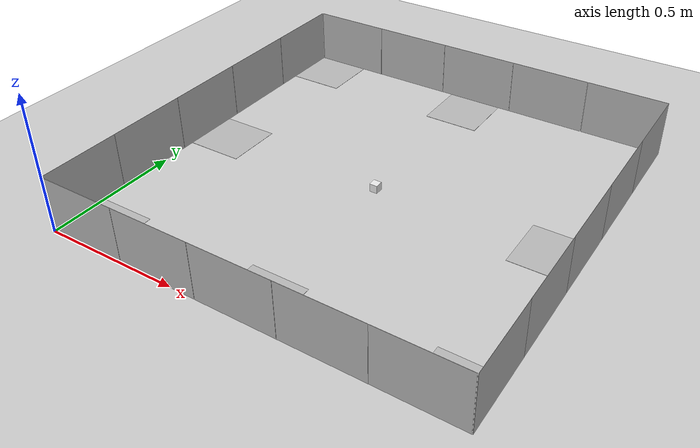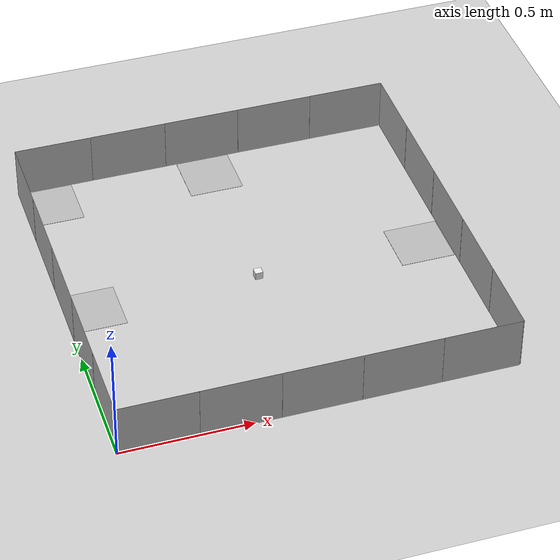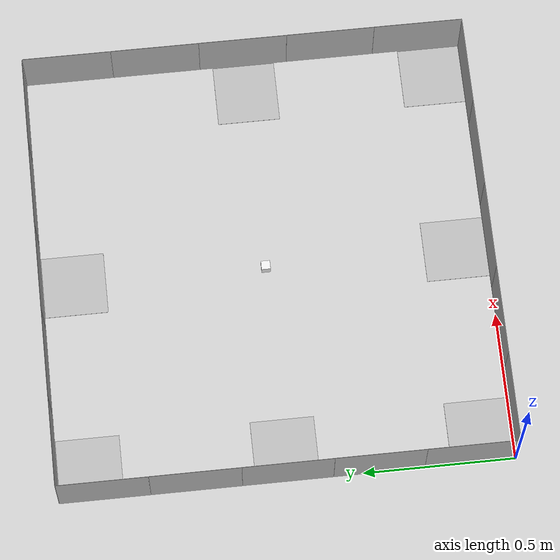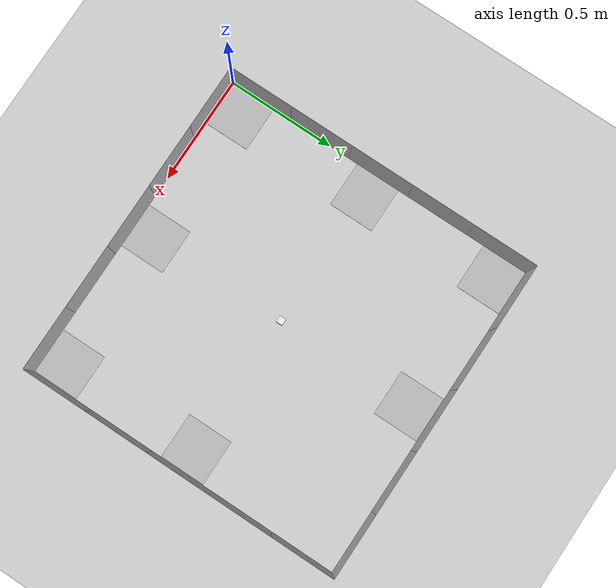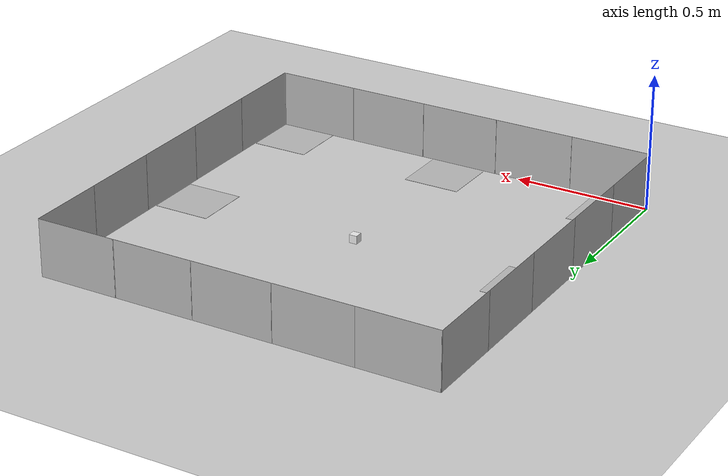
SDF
<?xml version="1.0" ?>

<sdf version="1.6">

  <world name="ur3_cubes">

    <gui>
      <camera name="user_camera">
        <pose>1.4 -2.3 1.4 0.0 0.25 1.9</pose>
      </camera>
    </gui>

    <gravity>0 0 -9.81</gravity>

    <physics name="default_physics" default="0" type="ode">
      <max_step_size>0.001</max_step_size>
      <real_time_factor>1</real_time_factor>
      <real_time_update_rate>1000</real_time_update_rate>
    </physics>

    <scene>
      <ambient>0.4 0.4 0.4 1</ambient>
      <background>0.7 0.7 0.7 1</background>
      <shadows>1</shadows>
    </scene>

    <!-- Light Source -->
    <include>
      <uri>model://sun</uri>
    </include>

    <!-- A ground plane -->
    <include>
      <uri>model://ground_plane</uri>
      <pose>0 0 0 0 0 0</pose>
    </include>

    <light type="point" name="point">
      <pose>0.7425 0.7425 2 0 0 0</pose>
      <diffuse>1 1 1 1</diffuse>
      <specular>.1 .1 .1 1</specular>
      <attenuation>
        <range>20</range>
        <linear>0.2</linear>
        <constant>0.8</constant>
        <quadratic>0.01</quadratic>
      </attenuation>
      <cast_shadows>false</cast_shadows>
    </light>

    <!-- A gazebo links attacher -->

    <!-- The robot base -->
    <!-- Table -->
    <!-- Table top is at (x,y,z) = (0.7, 0, 0.775) -->
    <!-- Table top size is 0.9x0.9 -->

    <model name="cube">
      <pose>0.7425 0.7425 0.00 0 0 0</pose>
      <link name="link">
        <pose>0 0 0.015 0 0 0</pose>
        <inertial>
          <mass>0.02</mass>
          <inertia>
            <ixx>2.3541666666666672e-05</ixx>
            <ixy>0</ixy>
            <ixz>0</ixz>
            <iyy>2.3541666666666672e-05</iyy>
            <iyz>0</iyz>
            <izz>2.3541666666666672e-05</izz>
          </inertia>
        </inertial>
        <collision name="collision">
          <geometry>
            <box>
              <size>0.03 0.03 0.03</size>
            </box>
          </geometry>
          <surface>
            <friction>
              <ode>
                <mu>0.10</mu>
                <mu2>0.10</mu2>
              </ode>
            </friction>
          </surface>
        </collision>
        <visual name="visual">
          <geometry>
            <box>
              <size>0.03 0.03 0.03</size>
            </box>
          </geometry>
          <material>
            <script>
              <uri>file://media/materials/scripts/gazebo.material</uri>
              <name>Gazebo/white</name>
            </script>
          </material>
        </visual>
      </link>
    </model>

    <model name="base1">
      <include >
        <uri>model://base1</uri>
        <pose>0.0 0.0 0.0 0.0 0.0 0.0</pose>
      </include>
    </model>

    <model name="base4">
      <include >
        <uri>model://base4</uri>
        <pose>0.6395 0.0 0.0 0.0 0.0 0.0</pose>
      </include>
    </model>

    <model name="base2">
      <include >
        <uri>model://base2</uri>
        <pose>1.279 0.0 0.0 0.0 0.0 0.0</pose>
      </include>
    </model>

    <model name="base3">
      <include >
        <uri>model://base3</uri>
        <pose>1.279 0.6395 0.0 0.0 0.0 0.0</pose>
      </include>
    </model>

    <model name="base6">
      <include >
        <uri>model://base6</uri>
        <pose>0.0 0.6395 0.0 0.0 0.0 0.0</pose>
      </include>
    </model>

    <model name="base7">
      <include >
        <uri>model://base7</uri>
        <pose>0.0 1.279 0.0 0.0 0.0 0.0</pose>
      </include>
    </model>

    <model name="base5">
      <include >
        <uri>model://base5</uri>
        <pose>0.6395 1.279 0.0 0.0 0.0 0.0</pose>
      </include>
    </model>

    <model name="block1">
      <include >
        <uri>model://block1</uri>
        <pose>0.0 0.0 0.0 0.0 0.0 0.0</pose>
      </include>
    </model>

    <model name="block2">
      <include >
        <uri>model://block2</uri>
        <pose>0.298 0.0 0.0 0.0 0.0 0.0</pose>
      </include>
    </model>

    <model name="block3">
      <include >
        <uri>model://block3</uri>
        <pose>0.596 0.0 0.0 0.0 0.0 0.0</pose>
      </include>
    </model>

    <model name="block4">
      <include >
        <uri>model://block4</uri>
        <pose>0.894 0.0 0.0 0.0 0.0 0.0</pose>
      </include>
    </model>

    <model name="block5">
      <include >
        <uri>model://block5</uri>
        <pose>1.192 0.0 0.0 0.0 0.0 0.0</pose>
      </include>
    </model>

    <model name="block6">
      <include >
        <uri>model://block6</uri>
        <pose>1.491 0.00 0.0 0.0 0.0 1.57</pose>
      </include>
    </model>

    <model name="block7">
      <include >
        <uri>model://block7</uri>
        <pose>1.491 0.298 0.0 0.0 0.0 1.57</pose>
      </include>
    </model>

    <model name="block8">
      <include >
        <uri>model://block8</uri>
        <pose>1.491 0.596 0.0 0.0 0.0 1.57</pose>
      </include>
    </model>

    <model name="block9">
      <include >
        <uri>model://block9</uri>
        <pose>1.491 0.894 0.0 0.0 0.0 1.57</pose>
      </include>
    </model>

    <model name="block10">
      <include >
        <uri>model://block10</uri>
        <pose>1.491 1.192 0.0 0.0 0.0 1.57</pose>
      </include>
    </model>

    <model name="block11">
      <include >
        <uri>model://block11</uri>
        <pose>1.491 1.490 0.0 0.0 0.0 3.14</pose>
      </include>
    </model>

    <model name="block12">
      <include >
        <uri>model://block12</uri>
        <pose>1.192 1.490 0.0 0.0 0.0 3.14</pose>
      </include>
    </model>

    <model name="block13">
      <include >
        <uri>model://block13</uri>
        <pose>0.894 1.490 0.0 0.0 0.0 3.14</pose>
      </include>
    </model>

    <model name="block14">
      <include >
        <uri>model://block14</uri>
        <pose>0.596 1.490 0.0 0.0 0.0 3.14</pose>
      </include>
    </model>

    <model name="block15">
      <include >
        <uri>model://block15</uri>
        <pose>0.298 1.490 0.0 0.0 0.0 3.14</pose>
      </include>
    </model>

    <model name="block16">
      <include >
        <uri>model://block16</uri>
        <pose>0.00 1.490 0.0 0.0 0.0 4.712</pose>
      </include>
    </model>

    <model name="block17">
      <include >
        <uri>model://block17</uri>
        <pose>0.00 1.192 0.0 0.0 0.0 4.712</pose>
      </include>
    </model>

    <model name="block18">
      <include >
        <uri>model://block18</uri>
        <pose>0.00 0.894 0.0 0.0 0.0 4.712</pose>
      </include>
    </model>

    <model name="block19">
      <include >
        <uri>model://block19</uri>
        <pose>0.00 0.596 0.0 0.0 0.0 4.712</pose>
      </include>
    </model>

    <model name="block20">
      <include >
        <uri>model://block20</uri>
        <pose>0.00 0.298 0.0 0.0 0.0 4.712</pose>
      </include>
    </model>

  </world>
</sdf>

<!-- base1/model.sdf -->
<sdf version="1.6">
    <model name="base1">
    <static>true</static>
      <link name="link">
        <pose>0.105 0.105 0 0 0 0</pose>
        <visual name="visual">
          <geometry>
            <box>
              <size>0.210 0.210 0.001</size>
            </box>
          </geometry>
        <material>
          <script>
            <uri>model://base1/materials/scripts/</uri>
            <uri>model://base1/materials/textures/</uri>
            <name>Base/Image1</name>
          </script>
        </material>
        </visual>
      </link>
    </model>

</sdf>

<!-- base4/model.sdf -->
<sdf version="1.6">
    <model name="base4">
    <static>true</static>
      <link name="link">
        <pose>0.105 0.105 0 0 0 0</pose>
        <visual name="visual">
          <geometry>
            <box>
              <size>0.210 0.210 0.001</size>
            </box>
          </geometry>
        <material>
          <script>
            <uri>model://base4/materials/scripts/</uri>
            <uri>model://base4/materials/textures/</uri>
            <name>Base/Image4</name>
          </script>
        </material>
        </visual>
      </link>
    </model>

</sdf>

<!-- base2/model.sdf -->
<sdf version="1.6">
    <model name="base2">
    <static>true</static>
      <link name="link">
        <pose>0.105 0.105 0 0 0 0</pose>
        <visual name="visual">
          <geometry>
            <box>
              <size>0.210 0.210 0.001</size>
            </box>
          </geometry>
        <material>
          <script>
            <uri>model://base2/materials/scripts/</uri>
            <uri>model://base2/materials/textures/</uri>
            <name>Base/Image2</name>
          </script>
        </material>
        </visual>
      </link>
    </model>

</sdf>

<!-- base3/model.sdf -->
<sdf version="1.6">
    <model name="base3">
    <static>true</static>
      <link name="link">
        <pose>0.105 0.105 0 0 0 0</pose>
        <visual name="visual">
          <geometry>
            <box>
              <size>0.210 0.210 0.001</size>
            </box>
          </geometry>
        <material>
          <script>
            <uri>model://base3/materials/scripts/</uri>
            <uri>model://base3/materials/textures/</uri>
            <name>Base/Image3</name>
          </script>
        </material>
        </visual>
      </link>
    </model>

</sdf>

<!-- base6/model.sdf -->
<sdf version="1.6">
    <model name="base6">
    <static>true</static>
      <link name="link">
        <pose>0.105 0.105 0 0 0 0</pose>
        <visual name="visual">
          <geometry>
            <box>
              <size>0.210 0.210 0.001</size>
            </box>
          </geometry>
        <material>
          <script>
            <uri>model://base6/materials/scripts/</uri>
            <uri>model://base6/materials/textures/</uri>
            <name>Base/Image6</name>
          </script>
        </material>
        </visual>
      </link>
    </model>

</sdf>

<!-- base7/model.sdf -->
<sdf version="1.6">
    <model name="base7">
    <static>true</static>
      <link name="link">
        <pose>0.105 0.105 0 0 0 0</pose>
        <visual name="visual">
          <geometry>
            <box>
              <size>0.210 0.210 0.001</size>
            </box>
          </geometry>
        <material>
          <script>
            <uri>model://base7/materials/scripts/</uri>
            <uri>model://base7/materials/textures/</uri>
            <name>Base/Image7</name>
          </script>
        </material>
        </visual>
      </link>
    </model>

</sdf>

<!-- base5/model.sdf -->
<sdf version="1.6">
    <model name="base1">
    <static>true</static>
      <link name="link">
        <pose>0.105 0.105 0 0 0 0</pose>
        <visual name="visual">
          <geometry>
            <box>
              <size>0.210 0.210 0.001</size>
            </box>
          </geometry>
        <material>
          <script>
            <uri>model://base5/materials/scripts/</uri>
            <uri>model://base5/materials/textures/</uri>
            <name>Base/Image5</name>
          </script>
        </material>
        </visual>
      </link>
    </model>

</sdf>

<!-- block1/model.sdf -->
<sdf version="1.6">
    <model name="block1">
      <static>true</static>
      <link name="link">
        <pose>0.1485 -0.0005 0.105 0 0 0</pose>
        <visual name="visual">
          <geometry>
            <box>
              <size>0.297 0.001 0.210</size>
            </box>
          </geometry>
        <material>
          <script>
            <uri>model://block1/materials/scripts/</uri>
            <uri>model://block1/materials/textures/</uri>
            <name>AprilTag/Image</name>
          </script>
        </material>
        </visual>
      </link>
    </model>
</sdf>

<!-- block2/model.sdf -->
<sdf version="1.6">
    <model name="block2">
      <static>true</static>
      <link name="link">
        <pose>0.1485 -0.0005 0.105 0 0 0</pose>
        <visual name="visual">
          <geometry>
            <box>
              <size>0.297 0.001 0.210</size>
            </box>
          </geometry>
        <material>
          <script>
            <uri>model://block2/materials/scripts/</uri>
            <uri>model://block2/materials/textures/</uri>
            <name>AprilTag/Image2</name>
          </script>
        </material>
        </visual>
      </link>
    </model>
</sdf>

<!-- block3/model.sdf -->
<sdf version="1.6">
    <model name="block1">
      <static>true</static>
      <link name="link">
        <pose>0.1485 -0.0005 0.105 0 0 0</pose>
        <visual name="visual">
          <geometry>
            <box>
              <size>0.297 0.001 0.210</size>
            </box>
          </geometry>
        <material>
          <script>
            <uri>model://block3/materials/scripts/</uri>
            <uri>model://block3/materials/textures/</uri>
            <name>AprilTag/Image3</name>
          </script>
        </material>
        </visual>
      </link>
    </model>
</sdf>

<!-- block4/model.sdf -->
<sdf version="1.6">
    <model name="block1">
      <static>true</static>
      <link name="link">
        <pose>0.1485 -0.0005 0.105 0 0 0</pose>
        <visual name="visual">
          <geometry>
            <box>
              <size>0.297 0.001 0.210</size>
            </box>
          </geometry>
        <material>
          <script>
            <uri>model://block4/materials/scripts/</uri>
            <uri>model://block4/materials/textures/</uri>
            <name>AprilTag/Image4</name>
          </script>
        </material>
        </visual>
      </link>
    </model>
</sdf>

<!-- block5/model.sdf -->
<sdf version="1.6">
    <model name="block5">
      <static>true</static>
      <link name="link">
        <pose>0.1485 -0.0005 0.105 0 0 0</pose>
        <visual name="visual">
          <geometry>
            <box>
              <size>0.297 0.001 0.210</size>
            </box>
          </geometry>
        <material>
          <script>
            <uri>model://block5/materials/scripts/</uri>
            <uri>model://block5/materials/textures/</uri>
            <name>AprilTag/Image5</name>
          </script>
        </material>
        </visual>
      </link>
    </model>
</sdf>

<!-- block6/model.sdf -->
<sdf version="1.6">
    <model name="block1">
      <static>true</static>
      <link name="link">
        <pose>0.1485 -0.0005 0.105 0 0 0</pose>
        <visual name="visual">
          <geometry>
            <box>
              <size>0.297 0.001 0.210</size>
            </box>
          </geometry>
        <material>
          <script>
            <uri>model://block6/materials/scripts/</uri>
            <uri>model://block6/materials/textures/</uri>
            <name>AprilTag/Image6</name>
          </script>
        </material>
        </visual>
      </link>
    </model>
</sdf>

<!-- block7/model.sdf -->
<sdf version="1.6">
    <model name="block1">
      <static>true</static>
      <link name="link">
        <pose>0.1485 -0.0005 0.105 0 0 0</pose>
        <visual name="visual">
          <geometry>
            <box>
              <size>0.297 0.001 0.210</size>
            </box>
          </geometry>
        <material>
          <script>
            <uri>model://block7/materials/scripts/</uri>
            <uri>model://block7/materials/textures/</uri>
            <name>AprilTag/Image7</name>
          </script>
        </material>
        </visual>
      </link>
    </model>
</sdf>

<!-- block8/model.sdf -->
<sdf version="1.6">
    <model name="block8">
      <static>true</static>
      <link name="link">
        <pose>0.1485 -0.0005 0.105 0 0 0</pose>
        <visual name="visual">
          <geometry>
            <box>
              <size>0.297 0.001 0.210</size>
            </box>
          </geometry>
        <material>
          <script>
            <uri>model://block8/materials/scripts/</uri>
            <uri>model://block8/materials/textures/</uri>
            <name>AprilTag/Image8</name>
          </script>
        </material>
        </visual>
      </link>
    </model>
</sdf>

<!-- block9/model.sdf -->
<sdf version="1.6">
    <model name="block9">
      <static>true</static>
      <link name="link">
        <pose>0.1485 -0.0005 0.105 0 0 0</pose>
        <visual name="visual">
          <geometry>
            <box>
              <size>0.297 0.001 0.210</size>
            </box>
          </geometry>
        <material>
          <script>
            <uri>model://block9/materials/scripts/</uri>
            <uri>model://block9/materials/textures/</uri>
            <name>AprilTag/Image9</name>
          </script>
        </material>
        </visual>
      </link>
    </model>
</sdf>

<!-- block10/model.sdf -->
<sdf version="1.6">
    <model name="block10">
      <static>true</static>
      <link name="link">
        <pose>0.1485 -0.0005 0.105 0 0 0</pose>
        <visual name="visual">
          <geometry>
            <box>
              <size>0.297 0.001 0.210</size>
            </box>
          </geometry>
        <material>
          <script>
            <uri>model://block10/materials/scripts/</uri>
            <uri>model://block10/materials/textures/</uri>
            <name>AprilTag/Image10</name>
          </script>
        </material>
        </visual>
      </link>
    </model>
</sdf>

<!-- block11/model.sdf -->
<sdf version="1.6">
    <model name="block11">
      <static>true</static>
      <link name="link">
        <pose>0.1485 -0.0005 0.105 0 0 0</pose>
        <visual name="visual">
          <geometry>
            <box>
              <size>0.297 0.001 0.210</size>
            </box>
          </geometry>
        <material>
          <script>
            <uri>model://block11/materials/scripts/</uri>
            <uri>model://block11/materials/textures/</uri>
            <name>AprilTag/Image11</name>
          </script>
        </material>
        </visual>
      </link>
    </model>
</sdf>

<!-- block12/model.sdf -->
<sdf version="1.6">
    <model name="block12">
      <static>true</static>
      <link name="link">
        <pose>0.1485 -0.0005 0.105 0 0 0</pose>
        <visual name="visual">
          <geometry>
            <box>
              <size>0.297 0.001 0.210</size>
            </box>
          </geometry>
        <material>
          <script>
            <uri>model://block12/materials/scripts/</uri>
            <uri>model://block12/materials/textures/</uri>
            <name>AprilTag/Image12</name>
          </script>
        </material>
        </visual>
      </link>
    </model>
</sdf>

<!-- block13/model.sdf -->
<sdf version="1.6">
    <model name="block13">
      <static>true</static>
      <link name="link">
        <pose>0.1485 -0.0005 0.105 0 0 0</pose>
        <visual name="visual">
          <geometry>
            <box>
              <size>0.297 0.001 0.210</size>
            </box>
          </geometry>
        <material>
          <script>
            <uri>model://block13/materials/scripts/</uri>
            <uri>model://block13/materials/textures/</uri>
            <name>AprilTag/Image13</name>
          </script>
        </material>
        </visual>
      </link>
    </model>
</sdf>

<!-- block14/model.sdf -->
<sdf version="1.6">
    <model name="block14">
      <static>true</static>
      <link name="link">
        <pose>0.1485 -0.0005 0.105 0 0 0</pose>
        <visual name="visual">
          <geometry>
            <box>
              <size>0.297 0.001 0.210</size>
            </box>
          </geometry>
        <material>
          <script>
            <uri>model://block14/materials/scripts/</uri>
            <uri>model://block14/materials/textures/</uri>
            <name>AprilTag/Image14</name>
          </script>
        </material>
        </visual>
      </link>
    </model>
</sdf>

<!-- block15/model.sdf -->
<sdf version="1.6">
    <model name="block15">
      <static>true</static>
      <link name="link">
        <pose>0.1485 -0.0005 0.105 0 0 0</pose>
        <visual name="visual">
          <geometry>
            <box>
              <size>0.297 0.001 0.210</size>
            </box>
          </geometry>
        <material>
          <script>
            <uri>model://block15/materials/scripts/</uri>
            <uri>model://block15/materials/textures/</uri>
            <name>AprilTag/Image15</name>
          </script>
        </material>
        </visual>
      </link>
    </model>
</sdf>

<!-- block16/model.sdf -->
<sdf version="1.6">
    <model name="block16">
      <static>true</static>
      <link name="link">
        <pose>0.1485 -0.0005 0.105 0 0 0</pose>
        <visual name="visual">
          <geometry>
            <box>
              <size>0.297 0.001 0.210</size>
            </box>
          </geometry>
        <material>
          <script>
            <uri>model://block16/materials/scripts/</uri>
            <uri>model://block16/materials/textures/</uri>
            <name>AprilTag/Image16</name>
          </script>
        </material>
        </visual>
      </link>
    </model>
</sdf>

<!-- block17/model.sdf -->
<sdf version="1.6">
    <model name="block17">
      <static>true</static>
      <link name="link">
        <pose>0.1485 -0.0005 0.105 0 0 0</pose>
        <visual name="visual">
          <geometry>
            <box>
              <size>0.297 0.001 0.210</size>
            </box>
          </geometry>
        <material>
          <script>
            <uri>model://block17/materials/scripts/</uri>
            <uri>model://block17/materials/textures/</uri>
            <name>AprilTag/Image17</name>
          </script>
        </material>
        </visual>
      </link>
    </model>
</sdf>

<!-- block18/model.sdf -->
<sdf version="1.6">
    <model name="block18">
      <static>true</static>
      <link name="link">
        <pose>0.1485 -0.0005 0.105 0 0 0</pose>
        <visual name="visual">
          <geometry>
            <box>
              <size>0.297 0.001 0.210</size>
            </box>
          </geometry>
        <material>
          <script>
            <uri>model://block18/materials/scripts/</uri>
            <uri>model://block18/materials/textures/</uri>
            <name>AprilTag/Image18</name>
          </script>
        </material>
        </visual>
      </link>
    </model>
</sdf>

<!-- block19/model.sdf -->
<sdf version="1.6">
    <model name="block19">
      <static>true</static>
      <link name="link">
        <pose>0.1485 -0.0005 0.105 0 0 0</pose>
        <visual name="visual">
          <geometry>
            <box>
              <size>0.297 0.001 0.210</size>
            </box>
          </geometry>
        <material>
          <script>
            <uri>model://block19/materials/scripts/</uri>
            <uri>model://block19/materials/textures/</uri>
            <name>AprilTag/Image19</name>
          </script>
        </material>
        </visual>
      </link>
    </model>
</sdf>

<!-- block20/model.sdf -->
<sdf version="1.6">
    <model name="block20">
      <static>true</static>
      <link name="link">
        <pose>0.1485 -0.0005 0.105 0 0 0</pose>
        <visual name="visual">
          <geometry>
            <box>
              <size>0.297 0.001 0.210</size>
            </box>
          </geometry>
        <material>
          <script>
            <uri>model://block20/materials/scripts/</uri>
            <uri>model://block20/materials/textures/</uri>
            <name>AprilTag/Image20</name>
          </script>
        </material>
        </visual>
      </link>
    </model>
</sdf>
